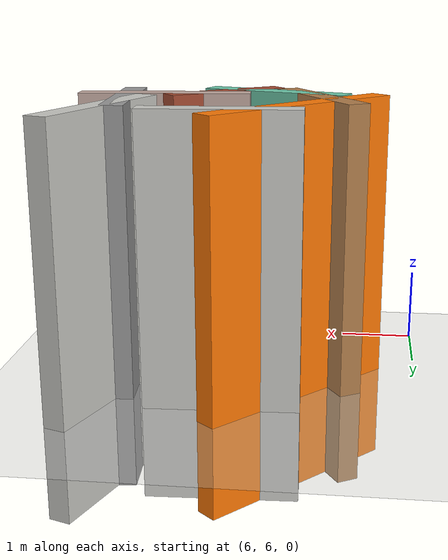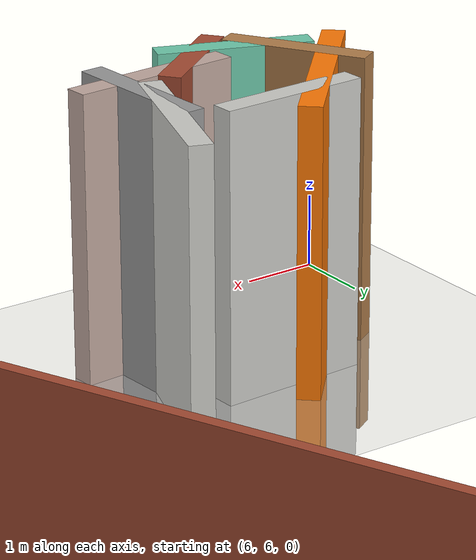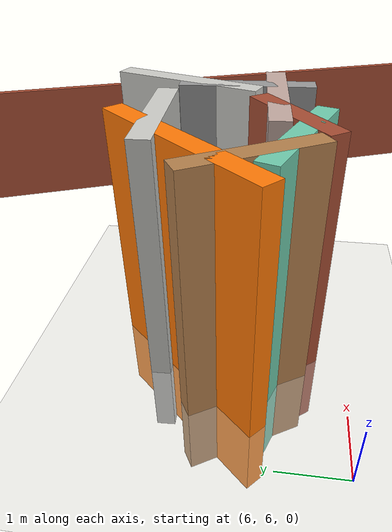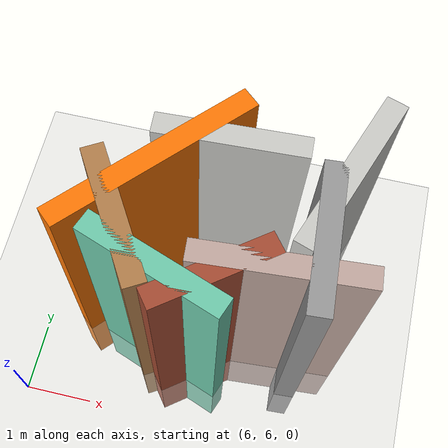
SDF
<sdf version="1.6">
 <world name="default">
  <model name="ground_plane">
   <static>1</static>
   <link name="link">
    <collision name="collision">
     <geometry><plane><normal>0 0 1</normal><size>100 100</size></plane></geometry>
     <surface><friction><ode><mu>100</mu><mu2>50</mu2></ode></friction></surface>
    </collision>
    <visual name="visual">
     <cast_shadows>0</cast_shadows>
     <geometry><plane><normal>0 0 1</normal><size>100 100</size></plane></geometry>
     <material>
      <script><uri>file://media/materials/scripts/gazebo.material</uri><name>Gazebo/Grey</name></script>
     </material>
    </visual>
   </link>
  </model>
  <model name="io2018obs1_1">
   <pose>8.60861 8.13307 0 0 -0 1.37311</pose>
   <link name="Wall_1">
    <collision name="Wall_1_Collision">
     <geometry><box><size>1.98802 0.3 5</size></box></geometry>
     <pose>0 0 1.25 0 -0 0</pose>
    </collision>
    <visual name="Wall_1_Visual">
     <pose>0 0 1.25 0 -0 0</pose>
     <geometry><box><size>1.98802 0.3 5</size></box></geometry>
     <material>
      <script><uri>file://media/materials/scripts/gazebo.material</uri><name>Gazebo/CeilingTiled</name></script>
      <ambient>1 1 1 1</ambient>
     </material>
     <meta><layer>0</layer></meta>
    </visual>
    <pose>0.680268 0.279956 0 0 -0 1.81211</pose>
   </link>
   <link name="Wall_2">
    <collision name="Wall_2_Collision">
     <geometry><box><size>2.98224 0.3 5</size></box></geometry>
     <pose>0 0 1.25 0 -0 0</pose>
    </collision>
    <visual name="Wall_2_Visual">
     <pose>0 0 1.25 0 -0 0</pose>
     <geometry><box><size>2.98224 0.3 5</size></box></geometry>
     <material>
      <script><uri>file://media/materials/scripts/gazebo.material</uri><name>Gazebo/Grey</name></script>
      <ambient>0.996078 0.47451 0.0196078 1</ambient>
     </material>
     <meta><layer>0</layer></meta>
    </visual>
    <pose>0.01442 1.04473 0 0 -0 2.60117</pose>
   </link>
   <link name="Wall_3">
    <collision name="Wall_3_Collision">
     <geometry><box><size>1.91541 0.3 5</size></box></geometry>
     <pose>0 0 1.25 0 -0 0</pose>
    </collision>
    <visual name="Wall_3_Visual">
     <pose>0 0 1.25 0 -0 0</pose>
     <geometry><box><size>1.91541 0.3 5</size></box></geometry>
     <material>
      <script><uri>file://media/materials/scripts/gazebo.material</uri><name>Gazebo/Wood</name></script>
      <ambient>1 0.764706 0.305882 1</ambient>
     </material>
     <meta><layer>0</layer></meta>
    </visual>
    <pose>-0.868641 1.11723 0 0 -0 -2.40096</pose>
   </link>
   <link name="Wall_4">
    <collision name="Wall_4_Collision">
     <geometry><box><size>2.0052 0.3 5</size></box></geometry>
     <pose>0 0 1.25 0 -0 0</pose>
    </collision>
    <visual name="Wall_4_Visual">
     <pose>0 0 1.25 0 -0 0</pose>
     <geometry><box><size>2.0052 0.3 5</size></box></geometry>
     <material>
      <script><uri>file://media/materials/scripts/gazebo.material</uri><name>Gazebo/Grey</name></script>
      <ambient>0.435294 0.796078 0.67451 1</ambient>
     </material>
     <meta><layer>0</layer></meta>
    </visual>
    <pose>-1.2417 0.42342 0 0 -0 -1.72387</pose>
   </link>
   <link name="Wall_5">
    <collision name="Wall_5_Collision">
     <geometry><box><size>1.71361 0.3 5</size></box></geometry>
     <pose>0 0 1.25 0 -0 0</pose>
    </collision>
    <visual name="Wall_5_Visual">
     <pose>0 0 1.25 0 -0 0</pose>
     <geometry><box><size>1.71361 0.3 5</size></box></geometry>
     <material>
      <script><uri>file://media/materials/scripts/gazebo.material</uri><name>Gazebo/Bricks</name></script>
      <ambient>1 1 1 1</ambient>
     </material>
     <meta><layer>0</layer></meta>
    </visual>
    <pose>-1.04078 -0.230654 0 0 -0 -0.718988</pose>
   </link>
   <link name="Wall_6">
    <collision name="Wall_6_Collision">
     <geometry><box><size>2.25058 0.3 5</size></box></geometry>
     <pose>0 0 1.25 0 -0 0</pose>
    </collision>
    <visual name="Wall_6_Visual">
     <pose>0 0 1.25 0 -0 0</pose>
     <geometry><box><size>2.25058 0.3 5</size></box></geometry>
     <material>
      <script><uri>file://media/materials/scripts/gazebo.material</uri><name>Gazebo/Grey</name></script>
      <ambient>0.760784 0.662745 0.627451 1</ambient>
     </material>
     <meta><layer>0</layer></meta>
    </visual>
    <pose>-0.634849 -0.933414 0 0 -0 -1.30095</pose>
   </link>
   <link name="Wall_7">
    <collision name="Wall_7_Collision">
     <geometry><box><size>2 0.3 5</size></box></geometry>
     <pose>0 0 1.25 0 -0 0</pose>
    </collision>
    <visual name="Wall_7_Visual">
     <pose>0 0 1.25 0 -0 0</pose>
     <geometry><box><size>2 0.3 5</size></box></geometry>
     <material>
      <script><uri>file://media/materials/scripts/gazebo.material</uri><name>Gazebo/Grey</name></script>
      <ambient>1 1 1 1</ambient>
     </material>
     <meta><layer>0</layer></meta>
    </visual>
    <pose>-0.094331 -1.27342 0 0 -0 0.261799</pose>
   </link>
   <link name="Wall_8">
    <collision name="Wall_8_Collision">
     <geometry><box><size>2.34356 0.3 5</size></box></geometry>
     <pose>0 0 1.25 0 -0 0</pose>
    </collision>
    <visual name="Wall_8_Visual">
     <pose>0 0 1.25 0 -0 0</pose>
     <geometry><box><size>2.34356 0.3 5</size></box></geometry>
     <material>
      <script><uri>file://media/materials/scripts/gazebo.material</uri><name>Gazebo/CeilingTiled</name></script>
      <ambient>1 1 1 1</ambient>
     </material>
     <meta><layer>0</layer></meta>
    </visual>
    <pose>0.821928 -1.23577 0 0 -0 -0.142091</pose>
   </link>
   <static>1</static>
  </model>
  <model name="wall1_2">
   <pose>7.63078 26.25 0 0 0 -1.17657</pose>
   <link name="Wall_0">
    <collision name="Wall_0_Collision">
     <geometry><box><size>50 0.15 2.5</size></box></geometry>
     <pose>0 0 1.25 0 -0 0</pose>
    </collision>
    <visual name="Wall_0_Visual">
     <pose>0 0 1.25 0 -0 0</pose>
     <geometry><box><size>50 0.15 2.5</size></box></geometry>
     <material>
      <script><uri>file://media/materials/scripts/gazebo.material</uri><name>Gazebo/Bricks</name></script>
      <ambient>1 1 1 1</ambient>
     </material>
    </visual>
    <pose>1e-06 0 0 0 -0 3.14159</pose>
   </link>
   <static>1</static>
  </model>
 </world>
</sdf>
